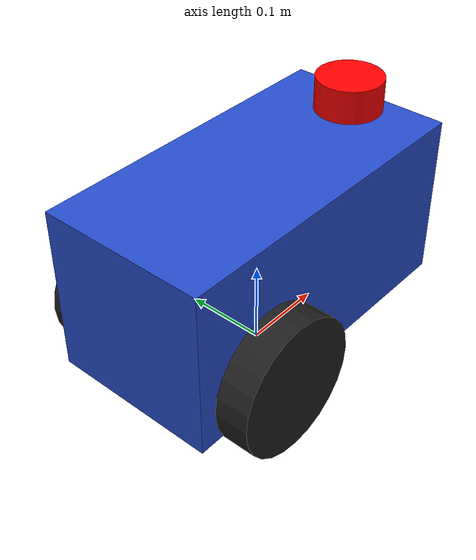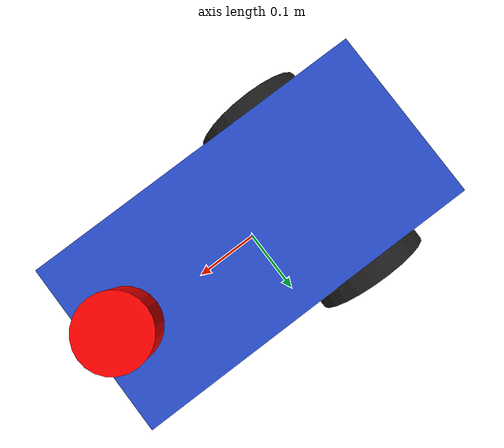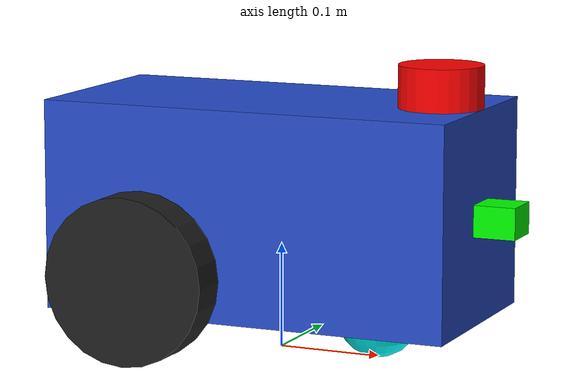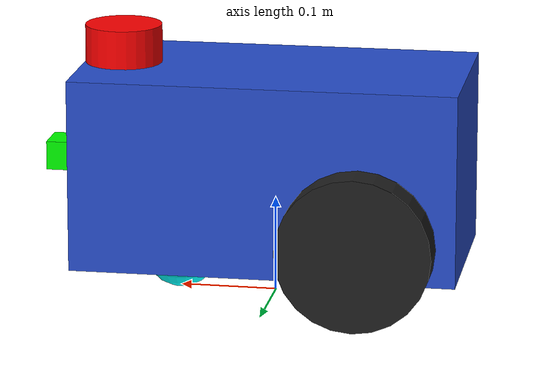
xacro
<robot name="mobile_robot" xmlns:xacro="http://www.ros.org/wiki/xacro">
    <xacro:property name="block_length" value="0.4"/>
    <xacro:property name="block_width" value="0.2"/>
    <xacro:property name="block_height" value="0.2"/>
    <xacro:property name="main_wheel_radius" value="0.08"/>
    <xacro:property name="main_wheel_width" value="0.04"/>
    <xacro:property name="center_wheel_radius" value="0.04"/>
    <xacro:property name="center_wheel_width" value="0.02"/>
    <xacro:property name="ground_clearance" value="${center_wheel_radius}"/>
    <xacro:property name="base_mass" value="4.0"/>
    <xacro:property name="main_wheel_mass" value="0.3"/>
    <xacro:property name="center_wheel_mass" value="0.1"/>

    <xacro:macro name="box_inertia" params="mass x y z">
      <inertial>
        <mass value="${mass}"/>
        <inertia
          ixx="${mass * (y*y + z*z) / 12.0}"
          ixy="0.0"
          ixz="0.0"
          iyy="${mass * (x*x + z*z) / 12.0}"
          iyz="0.0"
          izz="${mass * (x*x + y*y) / 12.0}"/>
      </inertial>
    </xacro:macro>

    <xacro:macro name="cylinder_inertia" params="mass radius width">
      <inertial>
        <mass value="${mass}"/>
        <inertia
          ixx="${mass * (3.0*radius*radius + width*width) / 12.0}"
          ixy="0.0"
          ixz="0.0"
          iyy="${mass * radius*radius / 2.0}"
          iyz="0.0"
          izz="${mass * (3.0*radius*radius + width*width) / 12.0}"/>
      </inertial>
    </xacro:macro>

    <xacro:macro name="sphere_inertia" params="mass radius">
      <inertial>
        <mass value="${mass}"/>
        <inertia ixx="${(2/5) * mass * (radius*radius)}" ixy="0.0" ixz="0.0" iyy="${(2/5) * mass * (radius*radius)}" iyz="0.0" izz="${(2/5) * mass * (radius*radius)}"/>
      </inertial>
    </xacro:macro>

    <link name="base_footprint"/>

    <link name="base_link">
      <xacro:box_inertia mass="${base_mass}" x="${block_length}" y="${block_width}" z="${block_height}"/>
      <visual>
        <geometry>
          <box size="${block_length} ${block_width} ${block_height}"/>
        </geometry>
      </visual>
      <collision>
        <geometry>
          <box size="${block_length} ${block_width} ${block_height}"/>
        </geometry>
      </collision>
    </link>

    <link name="lidar_link">
      <visual>
        <origin rpy="0 0 0"/>
        <geometry>
          <cylinder radius="0.04" length="0.04"/>
        </geometry>
        <material name="red">
          <color rgba="1 0 0 1"/>
        </material>
      </visual>
    </link>

    <link name="camera_link">
      <visual>
        <geometry>
          <box size="0.04 0.04 0.03"/>
        </geometry>
        <material name="green">
          <color rgba="0 1 0 1"/>
        </material>
      </visual>
    </link>

    <link name="depth_camera_link">
      <visual>
        <geometry>
          <box size="0.04 0.04 0.03"/>
        </geometry>
        <material name="purple">
          <color rgba="0.5 0 1 1"/>
        </material>
      </visual>
    </link>

    <link name="imu_link"/>

    <link name="front_caster">
      <xacro:sphere_inertia mass="${center_wheel_mass}" radius="${center_wheel_radius}"/>
      <visual>
        <geometry>
          <sphere radius="${center_wheel_radius}"/>
        </geometry>
        <material name="Cyan">
          <color rgba="0 1.0 1.0 1.0"/>
        </material>
      </visual>
      <collision name="front_caster_collision">
        <geometry>
          <sphere radius="${center_wheel_radius}"/>
        </geometry>
      </collision>
    </link>

    <xacro:macro name="wheel" params="name parent x y z wheel_radius wheel_width wheel_mass">
      <link name="${name}_wheel_link">
        <xacro:cylinder_inertia mass="${wheel_mass}" radius="${wheel_radius}" width="${wheel_width}"/>
        <visual>
          <origin rpy="1.5708 0 0"/>
          <geometry>
            <cylinder radius="${wheel_radius}" length="${wheel_width}"/>
          </geometry>
        </visual>
        <collision>
          <origin rpy="1.5708 0 0"/>
          <geometry>
            <cylinder radius="${wheel_radius}" length="${wheel_width}"/>
          </geometry>
        </collision>
      </link>

      <joint name="${name}_wheel_joint" type="continuous">
        <parent link="${parent}"/>
        <child link="${name}_wheel_link"/>
        <origin xyz="${x} ${y} ${z}" rpy="0 0 0"/>
        <axis xyz="0 1 0"/>
      </joint>
    </xacro:macro>

    <joint name="base_footprint_joint" type="fixed">
      <parent link="base_footprint"/>
      <child link="base_link"/>
      <origin xyz="0 0 ${block_height/2 + ground_clearance}" rpy="0 0 0"/>
    </joint>

    <joint name="lidar_joint" type="fixed">
      <parent link="base_link"/>
      <child link="lidar_link"/>
      <origin xyz="${block_length/2 - 0.04} 0 ${block_height/2 + 0.02}" rpy="0 0 0"/>
    </joint>

    <joint name="camera_joint" type="fixed">
      <parent link="base_link"/>
      <child link="camera_link"/>
      <origin xyz="${block_length/2 + 0.02} 0 0" rpy="0 0 0"/>
    </joint>

    <joint name="depth_camera_joint" type="fixed">
      <parent link="base_link"/>
      <child link="depth_camera_link"/>
      <origin xyz="${block_length/2 + 0.02} 0 0" rpy="0 0 0"/>
    </joint>

    <joint name="imu_joint" type="fixed">
      <parent link="base_link"/>
      <child link="imu_link"/>
      <origin xyz="0 0 0.08" rpy="0 0 0"/>
    </joint>

    <xacro:wheel name="left" parent="base_link" x="-${block_length/4}" y="${block_width/2 + main_wheel_width/2}" z="${main_wheel_radius - block_height/2 - ground_clearance}" wheel_radius="${main_wheel_radius}" wheel_width="${main_wheel_width}" wheel_mass="${main_wheel_mass}"/>
    <xacro:wheel name="right" parent="base_link" x="-${block_length/4}" y="${-block_width/2 - main_wheel_width/2}" z="${main_wheel_radius - block_height/2 - ground_clearance}" wheel_radius="${main_wheel_radius}" wheel_width="${main_wheel_width}" wheel_mass="${main_wheel_mass}"/>

    <joint name="caster_joint" type="fixed">
      <parent link="base_link"/>
      <child link="front_caster"/>
      <origin xyz="${block_length/4} 0.0 ${center_wheel_radius - block_height/2 - ground_clearance}" rpy="0 0 0"/>
    </joint>

    <gazebo reference="base_link">
      <material>Gazebo/Blue</material>
    </gazebo>

    <gazebo reference="left_wheel_link">
      <material>Gazebo/Black</material>
      <mu1>1.0</mu1>
      <mu2>1.0</mu2>
    </gazebo>

    <gazebo reference="right_wheel_link">
      <material>Gazebo/Black</material>
      <mu1>1.0</mu1>
      <mu2>1.0</mu2>
    </gazebo>

    <gazebo reference="front_caster">
      <material>Gazebo/Grey</material>
      <mu1>0.001</mu1>
      <mu2>0.001</mu2>
    </gazebo>

    <gazebo reference="lidar_link">
      <sensor name="lidar" type="gpu_lidar">
        <topic>/scan</topic>
        <gz_frame_id>lidar_link</gz_frame_id>
        <update_rate>10</update_rate>
        <ray>
          <scan>
            <horizontal>
              <samples>360</samples>
              <resolution>1</resolution>
              <min_angle>-3.14159</min_angle>
              <max_angle>3.14159</max_angle>
            </horizontal>
          </scan>
          <range>
            <min>0.12</min>
            <max>8.0</max>
            <resolution>0.01</resolution>
          </range>
        </ray>
        <always_on>true</always_on>
        <visualize>true</visualize>
      </sensor>
    </gazebo>

    <gazebo reference="camera_link">
      <sensor name="camera" type="camera">
        <topic>/camera/image_raw</topic>
        <gz_frame_id>camera_link</gz_frame_id>
        <update_rate>30</update_rate>
        <camera>
          <horizontal_fov>1.047</horizontal_fov>
          <image>
            <width>640</width>
            <height>480</height>
            <format>R8G8B8</format>
          </image>
          <clip>
            <near>0.05</near>
            <far>20.0</far>
          </clip>
        </camera>
        <always_on>true</always_on>
        <visualize>true</visualize>
      </sensor>
    </gazebo>

    <gazebo reference="depth_camera_link">
      <sensor name="depth_camera" type="depth_camera">
        <topic>/camera/depth/image_raw</topic>
        <gz_frame_id>depth_camera_link</gz_frame_id>
        <update_rate>30</update_rate>
        <camera>
          <horizontal_fov>1.047</horizontal_fov>
          <image>
            <width>640</width>
            <height>480</height>
            <format>R_FLOAT32</format>
          </image>
          <clip>
            <near>0.05</near>
            <far>8.0</far>
          </clip>
        </camera>
        <always_on>true</always_on>
        <visualize>true</visualize>
      </sensor>
    </gazebo>

    <gazebo reference="imu_link">
      <sensor name="imu" type="imu">
        <topic>/imu</topic>
        <update_rate>100</update_rate>
        <always_on>true</always_on>
      </sensor>
    </gazebo>

    <gazebo>
      <plugin
        filename="gz-sim-diff-drive-system"
        name="gz::sim::systems::DiffDrive">
        <left_joint>left_wheel_joint</left_joint>
        <right_joint>right_wheel_joint</right_joint>
        <wheel_separation>0.24</wheel_separation>
        <wheel_radius>${main_wheel_radius}</wheel_radius>
        <odom_publish_frequency>30</odom_publish_frequency>
        <max_linear_velocity>0.5</max_linear_velocity>
        <min_linear_velocity>-0.5</min_linear_velocity>
        <max_angular_velocity>1.5</max_angular_velocity>
        <min_angular_velocity>-1.5</min_angular_velocity>
        <frame_id>odom</frame_id>
        <child_frame_id>base_footprint</child_frame_id>
      </plugin>

      <plugin
        filename="gz-sim-joint-state-publisher-system"
        name="gz::sim::systems::JointStatePublisher">
        <joint_name>left_wheel_joint</joint_name>
        <joint_name>right_wheel_joint</joint_name>
        <topic>/joint_states</topic>
        <update_rate>30</update_rate>
      </plugin>
    </gazebo>
</robot>
